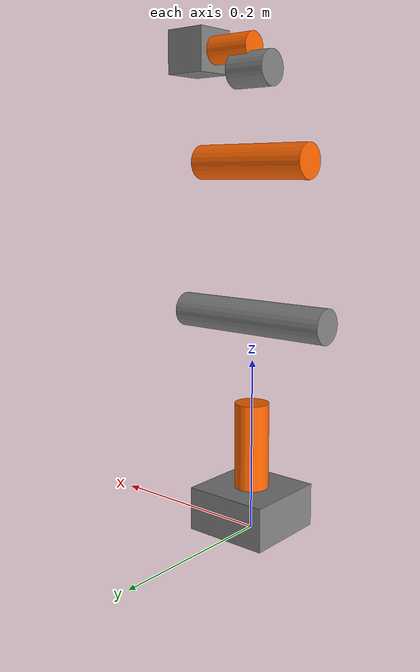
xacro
<?xml version="1.0"?>
<robot xmlns:xacro="http://www.ros.org/wiki/xacro" name="rover_arm">

  <xacro:property name="base_height" value="0.05" />
  <xacro:property name="link1_len"   value="0.10" /> <xacro:property name="link2_len"   value="0.20" /> <xacro:property name="link3_len"   value="0.15" /> <xacro:property name="link4_len"   value="0.05" /> <xacro:property name="gripper_len" value="0.08" /> <xacro:property name="link_radius" value="0.02" /> <material name="grey">
    <color rgba="0.5 0.5 0.5 1.0"/>
  </material>
  <material name="orange">
    <color rgba="1.0 0.4 0.0 1.0"/>
  </material>

  <link name="base_link">
    <visual>
      <geometry>
        <box size="0.1 0.1 ${base_height}"/>
      </geometry>
      <origin xyz="0 0 ${base_height/2}" rpy="0 0 0"/>
      <material name="grey"/>
    </visual>
    <collision>
      <geometry>
        <box size="0.1 0.1 ${base_height}"/>
      </geometry>
    </collision>
  </link>

  <link name="link1">
    <visual>
      <geometry>
        <cylinder radius="${link_radius}" length="${link1_len}"/>
      </geometry>
      <origin xyz="0 0 ${link1_len/2}" rpy="0 0 0"/>
      <material name="orange"/>
    </visual>
  </link>

  <joint name="joint1" type="revolute">
    <parent link="base_link"/>
    <child link="link1"/>
    <origin xyz="0 0 ${base_height}" rpy="0 0 0"/>
    <axis xyz="0 0 1"/>
    <limit lower="-3.14" upper="3.14" effort="2.0" velocity="1.0"/>
  </joint>

  <link name="link2">
    <visual>
      <geometry>
        <cylinder radius="${link_radius}" length="${link2_len}"/>
      </geometry>
      <origin xyz="0 0 ${link2_len/2}" rpy="0 1.5708 0"/> <material name="grey"/>
    </visual>
  </link>

  <joint name="joint2" type="revolute">
    <parent link="link1"/>
    <child link="link2"/>
    <origin xyz="0 0 ${link1_len}" rpy="0 0 0"/>
    <axis xyz="0 1 0"/> <limit lower="-1.57" upper="1.57" effort="2.0" velocity="1.0"/>
  </joint>

  <link name="link3">
    <visual>
      <geometry>
        <cylinder radius="${link_radius}" length="${link3_len}"/>
      </geometry>
      <origin xyz="0 0 ${link3_len/2}" rpy="0 1.5708 0"/>
      <material name="orange"/>
    </visual>
  </link>

  <joint name="joint3" type="revolute">
    <parent link="link2"/>
    <child link="link3"/>
    <origin xyz="0 0 ${link2_len}" rpy="0 0 0"/> <axis xyz="0 1 0"/>
    <limit lower="-2.5" upper="2.5" effort="2.0" velocity="1.0"/>
  </joint>

  <link name="link4">
    <visual>
      <geometry>
        <cylinder radius="${link_radius}" length="${link4_len}"/>
      </geometry>
      <origin xyz="0 0 ${link4_len/2}" rpy="0 1.5708 0"/>
      <material name="grey"/>
    </visual>
  </link>

  <joint name="joint4" type="revolute">
    <parent link="link3"/>
    <child link="link4"/>
    <origin xyz="0 0 ${link3_len}" rpy="0 0 0"/>
    <axis xyz="0 1 0"/>
    <limit lower="-1.57" upper="1.57" effort="1.0" velocity="1.0"/>
  </joint>

  <link name="link5">
    <visual>
      <geometry>
        <cylinder radius="${link_radius*0.8}" length="${gripper_len}"/>
      </geometry>
      <origin xyz="${gripper_len/2} 0 0" rpy="0 1.5708 0"/>
      <material name="orange"/>
    </visual>
  </link>

  <joint name="joint5" type="revolute">
    <parent link="link4"/>
    <child link="link5"/>
    <origin xyz="0 0 ${link4_len}" rpy="0 0 0"/>
    <axis xyz="1 0 0"/> <limit lower="-3.14" upper="3.14" effort="1.0" velocity="1.0"/>
  </joint>

  <link name="gripper_link">
    <visual>
      <geometry>
        <box size="0.05 0.05 0.05"/>
      </geometry>
      <origin xyz="0 0 0" rpy="0 0 0"/>
      <material name="grey"/>
    </visual>
  </link>

  <joint name="gripper_joint" type="fixed">
    <parent link="link5"/>
    <child link="gripper_link"/>
    <origin xyz="${gripper_len} 0 0" rpy="0 0 0"/>
  </joint>

</robot>
